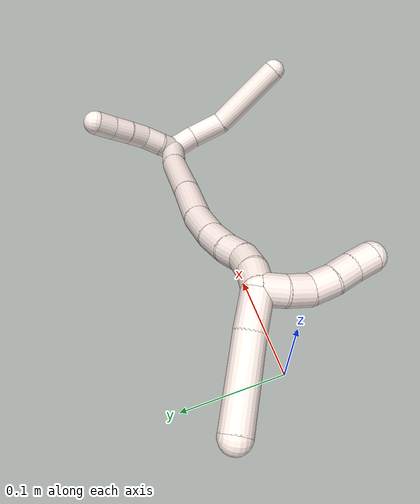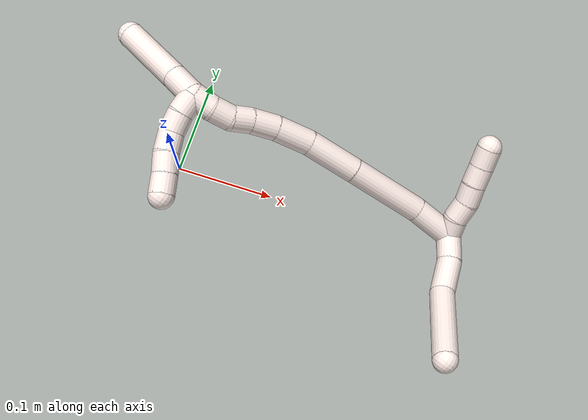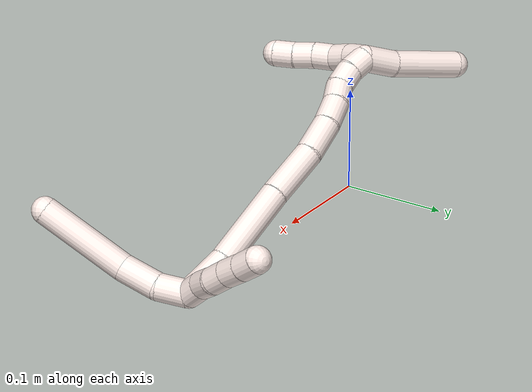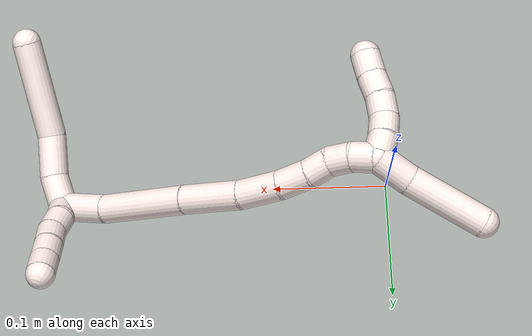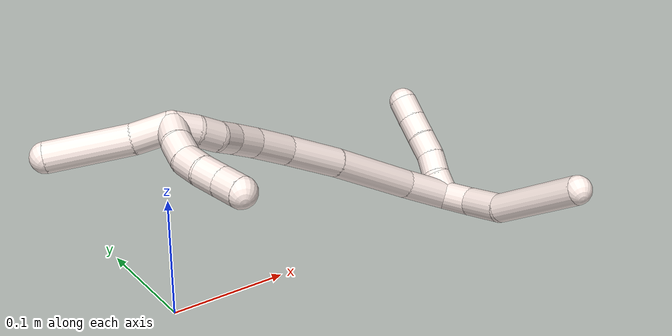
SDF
<sdf version="1.7">
 <world name="default">
  <model name="11">
   <static>0</static>
   <link name="11">
    <collision name="collision-cylinder-e_1_2_8">
     <pose>0.007377 0.005452 0.010743 -0.46965 0.549432 -0.134651</pose>
     <geometry><cylinder><radius>0.0125</radius><length>0.028253</length></cylinder></geometry>
     <surface>
      <friction><ode><mu>1.16</mu><mu2>1.16</mu2><slip1>0</slip1><slip2>0</slip2></ode></friction>
      <contact><ode><kp>1e+06</kp><kd>1</kd><max_vel>0</max_vel><min_depth>0.001</min_depth></ode></contact>
     </surface>
    </collision>
    <visual name="visual-cylinder-e_1_2_8">
     <pose>0.007377 0.005452 0.010743 -0.46965 0.549432 -0.134651</pose>
     <geometry><cylinder><radius>0.0125</radius><length>0.028253</length></cylinder></geometry>
     <material><ambient>1 0.933333 0.909804 1</ambient></material>
    </visual>
    <collision name="collision-cylinder-e_2_8_9">
     <pose>0.01982 0.020517 0.036425 -0.571717 0.277841 -0.082143</pose>
     <geometry><cylinder><radius>0.0125</radius><length>0.036947</length></cylinder></geometry>
     <surface>
      <friction><ode><mu>1.16</mu><mu2>1.16</mu2><slip1>0</slip1><slip2>0</slip2></ode></friction>
      <contact><ode><kp>1e+06</kp><kd>1</kd><max_vel>0</max_vel><min_depth>0.001</min_depth></ode></contact>
     </surface>
    </collision>
    <visual name="visual-cylinder-e_2_8_9">
     <pose>0.01982 0.020517 0.036425 -0.571717 0.277841 -0.082143</pose>
     <geometry><cylinder><radius>0.0125</radius><length>0.036947</length></cylinder></geometry>
     <material><ambient>1 0.933333 0.909804 1</ambient></material>
    </visual>
    <collision name="collision-cylinder-e_3_9_6">
     <pose>0.040152 0.06165 0.075265 -0.92206 0.36828 -0.184507</pose>
     <geometry><cylinder><radius>0.0125</radius><length>0.084801</length></cylinder></geometry>
     <surface>
      <friction><ode><mu>1.16</mu><mu2>1.16</mu2><slip1>0</slip1><slip2>0</slip2></ode></friction>
      <contact><ode><kp>1e+06</kp><kd>1</kd><max_vel>0</max_vel><min_depth>0.001</min_depth></ode></contact>
     </surface>
    </collision>
    <visual name="visual-cylinder-e_3_9_6">
     <pose>0.040152 0.06165 0.075265 -0.92206 0.36828 -0.184507</pose>
     <geometry><cylinder><radius>0.0125</radius><length>0.084801</length></cylinder></geometry>
     <material><ambient>1 0.933333 0.909804 1</ambient></material>
    </visual>
    <collision name="collision-cylinder-e_1_2_10">
     <pose>-0.002336 0.004346 -0.008698 -2.67818 -0.235733 0.930306</pose>
     <geometry><cylinder><radius>0.0125</radius><length>0.02</length></cylinder></geometry>
     <surface>
      <friction><ode><mu>1.16</mu><mu2>1.16</mu2><slip1>0</slip1><slip2>0</slip2></ode></friction>
      <contact><ode><kp>1e+06</kp><kd>1</kd><max_vel>0</max_vel><min_depth>0.001</min_depth></ode></contact>
     </surface>
    </collision>
    <visual name="visual-cylinder-e_1_2_10">
     <pose>-0.002336 0.004346 -0.008698 -2.67818 -0.235733 0.930306</pose>
     <geometry><cylinder><radius>0.0125</radius><length>0.02</length></cylinder></geometry>
     <material><ambient>1 0.933333 0.909804 1</ambient></material>
    </visual>
    <collision name="collision-cylinder-e_2_10_11">
     <pose>-0.004823 0.011813 -0.026895 -2.82425 -0.015197 0.094904</pose>
     <geometry><cylinder><radius>0.0125</radius><length>0.02</length></cylinder></geometry>
     <surface>
      <friction><ode><mu>1.16</mu><mu2>1.16</mu2><slip1>0</slip1><slip2>0</slip2></ode></friction>
      <contact><ode><kp>1e+06</kp><kd>1</kd><max_vel>0</max_vel><min_depth>0.001</min_depth></ode></contact>
     </surface>
    </collision>
    <visual name="visual-cylinder-e_2_10_11">
     <pose>-0.004823 0.011813 -0.026895 -2.82425 -0.015197 0.094904</pose>
     <geometry><cylinder><radius>0.0125</radius><length>0.02</length></cylinder></geometry>
     <material><ambient>1 0.933333 0.909804 1</ambient></material>
    </visual>
    <collision name="collision-cylinder-e_3_11_12">
     <pose>-0.007509 0.018476 -0.045396 -2.76657 -0.256153 1.19261</pose>
     <geometry><cylinder><radius>0.0125</radius><length>0.02</length></cylinder></geometry>
     <surface>
      <friction><ode><mu>1.16</mu><mu2>1.16</mu2><slip1>0</slip1><slip2>0</slip2></ode></friction>
      <contact><ode><kp>1e+06</kp><kd>1</kd><max_vel>0</max_vel><min_depth>0.001</min_depth></ode></contact>
     </surface>
    </collision>
    <visual name="visual-cylinder-e_3_11_12">
     <pose>-0.007509 0.018476 -0.045396 -2.76657 -0.256153 1.19261</pose>
     <geometry><cylinder><radius>0.0125</radius><length>0.02</length></cylinder></geometry>
     <material><ambient>1 0.933333 0.909804 1</ambient></material>
    </visual>
    <collision name="collision-cylinder-e_4_12_13">
     <pose>-0.012195 0.024994 -0.063699 -2.83209 -0.216963 1.21895</pose>
     <geometry><cylinder><radius>0.0125</radius><length>0.02</length></cylinder></geometry>
     <surface>
      <friction><ode><mu>1.16</mu><mu2>1.16</mu2><slip1>0</slip1><slip2>0</slip2></ode></friction>
      <contact><ode><kp>1e+06</kp><kd>1</kd><max_vel>0</max_vel><min_depth>0.001</min_depth></ode></contact>
     </surface>
    </collision>
    <visual name="visual-cylinder-e_4_12_13">
     <pose>-0.012195 0.024994 -0.063699 -2.83209 -0.216963 1.21895</pose>
     <geometry><cylinder><radius>0.0125</radius><length>0.02</length></cylinder></geometry>
     <material><ambient>1 0.933333 0.909804 1</ambient></material>
    </visual>
    <collision name="collision-cylinder-e_5_13_5">
     <pose>-0.016633 0.031363 -0.082125 -2.78541 -0.23056 1.14331</pose>
     <geometry><cylinder><radius>0.0125</radius><length>0.02</length></cylinder></geometry>
     <surface>
      <friction><ode><mu>1.16</mu><mu2>1.16</mu2><slip1>0</slip1><slip2>0</slip2></ode></friction>
      <contact><ode><kp>1e+06</kp><kd>1</kd><max_vel>0</max_vel><min_depth>0.001</min_depth></ode></contact>
     </surface>
    </collision>
    <visual name="visual-cylinder-e_5_13_5">
     <pose>-0.016633 0.031363 -0.082125 -2.78541 -0.23056 1.14331</pose>
     <geometry><cylinder><radius>0.0125</radius><length>0.02</length></cylinder></geometry>
     <material><ambient>1 0.933333 0.909804 1</ambient></material>
    </visual>
    <collision name="collision-cylinder-e_1_2_14">
     <pose>-0.020984 0.006647 -0.00104 -1.72599 -1.26052 1.4119</pose>
     <geometry><cylinder><radius>0.0125</radius><length>0.044073</length></cylinder></geometry>
     <surface>
      <friction><ode><mu>1.16</mu><mu2>1.16</mu2><slip1>0</slip1><slip2>0</slip2></ode></friction>
      <contact><ode><kp>1e+06</kp><kd>1</kd><max_vel>0</max_vel><min_depth>0.001</min_depth></ode></contact>
     </surface>
    </collision>
    <visual name="visual-cylinder-e_1_2_14">
     <pose>-0.020984 0.006647 -0.00104 -1.72599 -1.26052 1.4119</pose>
     <geometry><cylinder><radius>0.0125</radius><length>0.044073</length></cylinder></geometry>
     <material><ambient>1 0.933333 0.909804 1</ambient></material>
    </visual>
    <collision name="collision-cylinder-e_2_14_15">
     <pose>-0.078645 0.028753 0.000185 -1.42531 -1.1681 1.03793</pose>
     <geometry><cylinder><radius>0.0125</radius><length>0.07973</length></cylinder></geometry>
     <surface>
      <friction><ode><mu>1.16</mu><mu2>1.16</mu2><slip1>0</slip1><slip2>0</slip2></ode></friction>
      <contact><ode><kp>1e+06</kp><kd>1</kd><max_vel>0</max_vel><min_depth>0.001</min_depth></ode></contact>
     </surface>
    </collision>
    <visual name="visual-cylinder-e_2_14_15">
     <pose>-0.078645 0.028753 0.000185 -1.42531 -1.1681 1.03793</pose>
     <geometry><cylinder><radius>0.0125</radius><length>0.07973</length></cylinder></geometry>
     <material><ambient>1 0.933333 0.909804 1</ambient></material>
    </visual>
    <collision name="collision-cylinder-e_3_15_16">
     <pose>-0.140038 0.053251 0.004132 -1.38681 -1.21466 1.04751</pose>
     <geometry><cylinder><radius>0.0125</radius><length>0.052745</length></cylinder></geometry>
     <surface>
      <friction><ode><mu>1.16</mu><mu2>1.16</mu2><slip1>0</slip1><slip2>0</slip2></ode></friction>
      <contact><ode><kp>1e+06</kp><kd>1</kd><max_vel>0</max_vel><min_depth>0.001</min_depth></ode></contact>
     </surface>
    </collision>
    <visual name="visual-cylinder-e_3_15_16">
     <pose>-0.140038 0.053251 0.004132 -1.38681 -1.21466 1.04751</pose>
     <geometry><cylinder><radius>0.0125</radius><length>0.052745</length></cylinder></geometry>
     <material><ambient>1 0.933333 0.909804 1</ambient></material>
    </visual>
    <collision name="collision-cylinder-e_4_16_17">
     <pose>-0.181087 0.069634 0.009254 -1.13279 -1.10989 0.751004</pose>
     <geometry><cylinder><radius>0.0125</radius><length>0.036466</length></cylinder></geometry>
     <surface>
      <friction><ode><mu>1.16</mu><mu2>1.16</mu2><slip1>0</slip1><slip2>0</slip2></ode></friction>
      <contact><ode><kp>1e+06</kp><kd>1</kd><max_vel>0</max_vel><min_depth>0.001</min_depth></ode></contact>
     </surface>
    </collision>
    <visual name="visual-cylinder-e_4_16_17">
     <pose>-0.181087 0.069634 0.009254 -1.13279 -1.10989 0.751004</pose>
     <geometry><cylinder><radius>0.0125</radius><length>0.036466</length></cylinder></geometry>
     <material><ambient>1 0.933333 0.909804 1</ambient></material>
    </visual>
    <collision name="collision-cylinder-e_5_17_18">
     <pose>-0.208441 0.082716 0.01676 -0.954269 -1.00295 0.552346</pose>
     <geometry><cylinder><radius>0.0125</radius><length>0.026152</length></cylinder></geometry>
     <surface>
      <friction><ode><mu>1.16</mu><mu2>1.16</mu2><slip1>0</slip1><slip2>0</slip2></ode></friction>
      <contact><ode><kp>1e+06</kp><kd>1</kd><max_vel>0</max_vel><min_depth>0.001</min_depth></ode></contact>
     </surface>
    </collision>
    <visual name="visual-cylinder-e_5_17_18">
     <pose>-0.208441 0.082716 0.01676 -0.954269 -1.00295 0.552346</pose>
     <geometry><cylinder><radius>0.0125</radius><length>0.026152</length></cylinder></geometry>
     <material><ambient>1 0.933333 0.909804 1</ambient></material>
    </visual>
    <collision name="collision-cylinder-e_6_18_19">
     <pose>-0.227163 0.093377 0.025218 -0.842387 -0.862188 0.406428</pose>
     <geometry><cylinder><radius>0.0125</radius><length>0.020276</length></cylinder></geometry>
     <surface>
      <friction><ode><mu>1.16</mu><mu2>1.16</mu2><slip1>0</slip1><slip2>0</slip2></ode></friction>
      <contact><ode><kp>1e+06</kp><kd>1</kd><max_vel>0</max_vel><min_depth>0.001</min_depth></ode></contact>
     </surface>
    </collision>
    <visual name="visual-cylinder-e_6_18_19">
     <pose>-0.227163 0.093377 0.025218 -0.842387 -0.862188 0.406428</pose>
     <geometry><cylinder><radius>0.0125</radius><length>0.020276</length></cylinder></geometry>
     <material><ambient>1 0.933333 0.909804 1</ambient></material>
    </visual>
    <collision name="collision-cylinder-e_7_19_20">
     <pose>-0.243898 0.102378 0.030913 -1.26139 -1.12848 0.865759</pose>
     <geometry><cylinder><radius>0.0125</radius><length>0.020001</length></cylinder></geometry>
     <surface>
      <friction><ode><mu>1.16</mu><mu2>1.16</mu2><slip1>0</slip1><slip2>0</slip2></ode></friction>
      <contact><ode><kp>1e+06</kp><kd>1</kd><max_vel>0</max_vel><min_depth>0.001</min_depth></ode></contact>
     </surface>
    </collision>
    <visual name="visual-cylinder-e_7_19_20">
     <pose>-0.243898 0.102378 0.030913 -1.26139 -1.12848 0.865759</pose>
     <geometry><cylinder><radius>0.0125</radius><length>0.020001</length></cylinder></geometry>
     <material><ambient>1 0.933333 0.909804 1</ambient></material>
    </visual>
    <collision name="collision-cylinder-e_8_20_1">
     <pose>-0.262946 0.108787 0.032276 -1.54516 -1.34184 1.31695</pose>
     <geometry><cylinder><radius>0.0125</radius><length>0.020556</length></cylinder></geometry>
     <surface>
      <friction><ode><mu>1.16</mu><mu2>1.16</mu2><slip1>0</slip1><slip2>0</slip2></ode></friction>
      <contact><ode><kp>1e+06</kp><kd>1</kd><max_vel>0</max_vel><min_depth>0.001</min_depth></ode></contact>
     </surface>
    </collision>
    <visual name="visual-cylinder-e_8_20_1">
     <pose>-0.262946 0.108787 0.032276 -1.54516 -1.34184 1.31695</pose>
     <geometry><cylinder><radius>0.0125</radius><length>0.020556</length></cylinder></geometry>
     <material><ambient>1 0.933333 0.909804 1</ambient></material>
    </visual>
    <collision name="collision-cylinder-e_1_1_21">
     <pose>-0.286375 0.103353 0.030203 1.83883 -1.03029 -1.27747</pose>
     <geometry><cylinder><radius>0.0125</radius><length>0.031301</length></cylinder></geometry>
     <surface>
      <friction><ode><mu>1.16</mu><mu2>1.16</mu2><slip1>0</slip1><slip2>0</slip2></ode></friction>
      <contact><ode><kp>1e+06</kp><kd>1</kd><max_vel>0</max_vel><min_depth>0.001</min_depth></ode></contact>
     </surface>
    </collision>
    <visual name="visual-cylinder-e_1_1_21">
     <pose>-0.286375 0.103353 0.030203 1.83883 -1.03029 -1.27747</pose>
     <geometry><cylinder><radius>0.0125</radius><length>0.031301</length></cylinder></geometry>
     <material><ambient>1 0.933333 0.909804 1</ambient></material>
    </visual>
    <collision name="collision-cylinder-e_2_21_4">
     <pose>-0.331464 0.083155 0.023343 1.93413 -1.17316 -1.53386</pose>
     <geometry><cylinder><radius>0.0125</radius><length>0.068699</length></cylinder></geometry>
     <surface>
      <friction><ode><mu>1.16</mu><mu2>1.16</mu2><slip1>0</slip1><slip2>0</slip2></ode></friction>
      <contact><ode><kp>1e+06</kp><kd>1</kd><max_vel>0</max_vel><min_depth>0.001</min_depth></ode></contact>
     </surface>
    </collision>
    <visual name="visual-cylinder-e_2_21_4">
     <pose>-0.331464 0.083155 0.023343 1.93413 -1.17316 -1.53386</pose>
     <geometry><cylinder><radius>0.0125</radius><length>0.068699</length></cylinder></geometry>
     <material><ambient>1 0.933333 0.909804 1</ambient></material>
    </visual>
    <collision name="collision-cylinder-e_1_1_22">
     <pose>-0.273026 0.111508 0.042328 -0.038901 -0.007047 0.000137</pose>
     <geometry><cylinder><radius>0.0125</radius><length>0.02</length></cylinder></geometry>
     <surface>
      <friction><ode><mu>1.16</mu><mu2>1.16</mu2><slip1>0</slip1><slip2>0</slip2></ode></friction>
      <contact><ode><kp>1e+06</kp><kd>1</kd><max_vel>0</max_vel><min_depth>0.001</min_depth></ode></contact>
     </surface>
    </collision>
    <visual name="visual-cylinder-e_1_1_22">
     <pose>-0.273026 0.111508 0.042328 -0.038901 -0.007047 0.000137</pose>
     <geometry><cylinder><radius>0.0125</radius><length>0.02</length></cylinder></geometry>
     <material><ambient>1 0.933333 0.909804 1</ambient></material>
    </visual>
    <collision name="collision-cylinder-e_2_22_23">
     <pose>-0.271417 0.111772 0.062178 0.012687 0.168838 0.001074</pose>
     <geometry><cylinder><radius>0.0125</radius><length>0.02</length></cylinder></geometry>
     <surface>
      <friction><ode><mu>1.16</mu><mu2>1.16</mu2><slip1>0</slip1><slip2>0</slip2></ode></friction>
      <contact><ode><kp>1e+06</kp><kd>1</kd><max_vel>0</max_vel><min_depth>0.001</min_depth></ode></contact>
     </surface>
    </collision>
    <visual name="visual-cylinder-e_2_22_23">
     <pose>-0.271417 0.111772 0.062178 0.012687 0.168838 0.001074</pose>
     <geometry><cylinder><radius>0.0125</radius><length>0.02</length></cylinder></geometry>
     <material><ambient>1 0.933333 0.909804 1</ambient></material>
    </visual>
    <collision name="collision-cylinder-e_3_23_24">
     <pose>-0.26589 0.113987 0.080964 -0.256288 0.394824 -0.051533</pose>
     <geometry><cylinder><radius>0.0125</radius><length>0.02</length></cylinder></geometry>
     <surface>
      <friction><ode><mu>1.16</mu><mu2>1.16</mu2><slip1>0</slip1><slip2>0</slip2></ode></friction>
      <contact><ode><kp>1e+06</kp><kd>1</kd><max_vel>0</max_vel><min_depth>0.001</min_depth></ode></contact>
     </surface>
    </collision>
    <visual name="visual-cylinder-e_3_23_24">
     <pose>-0.26589 0.113987 0.080964 -0.256288 0.394824 -0.051533</pose>
     <geometry><cylinder><radius>0.0125</radius><length>0.02</length></cylinder></geometry>
     <material><ambient>1 0.933333 0.909804 1</ambient></material>
    </visual>
    <collision name="collision-cylinder-e_4_24_25">
     <pose>-0.256678 0.118161 0.09813 -0.219187 0.56634 -0.064016</pose>
     <geometry><cylinder><radius>0.0125</radius><length>0.02</length></cylinder></geometry>
     <surface>
      <friction><ode><mu>1.16</mu><mu2>1.16</mu2><slip1>0</slip1><slip2>0</slip2></ode></friction>
      <contact><ode><kp>1e+06</kp><kd>1</kd><max_vel>0</max_vel><min_depth>0.001</min_depth></ode></contact>
     </surface>
    </collision>
    <visual name="visual-cylinder-e_4_24_25">
     <pose>-0.256678 0.118161 0.09813 -0.219187 0.56634 -0.064016</pose>
     <geometry><cylinder><radius>0.0125</radius><length>0.02</length></cylinder></geometry>
     <material><ambient>1 0.933333 0.909804 1</ambient></material>
    </visual>
    <collision name="collision-cylinder-e_5_25_3">
     <pose>-0.24666 0.122491 0.114859 -0.285735 0.483939 -0.070975</pose>
     <geometry><cylinder><radius>0.0125</radius><length>0.02</length></cylinder></geometry>
     <surface>
      <friction><ode><mu>1.16</mu><mu2>1.16</mu2><slip1>0</slip1><slip2>0</slip2></ode></friction>
      <contact><ode><kp>1e+06</kp><kd>1</kd><max_vel>0</max_vel><min_depth>0.001</min_depth></ode></contact>
     </surface>
    </collision>
    <visual name="visual-cylinder-e_5_25_3">
     <pose>-0.24666 0.122491 0.114859 -0.285735 0.483939 -0.070975</pose>
     <geometry><cylinder><radius>0.0125</radius><length>0.02</length></cylinder></geometry>
     <material><ambient>1 0.933333 0.909804 1</ambient></material>
    </visual>
    <collision name="collision-sphere-3">
     <pose>-0.242007 0.124986 0.123352 0 -0 0</pose>
     <geometry><sphere><radius>0.0125</radius></sphere></geometry>
     <surface>
      <friction><ode><mu>1.16</mu><mu2>1.16</mu2><slip1>0</slip1><slip2>0</slip2></ode></friction>
      <contact><ode><kp>1e+06</kp><kd>1</kd><max_vel>0</max_vel><min_depth>0.001</min_depth></ode></contact>
     </surface>
    </collision>
    <visual name="visual-sphere-3">
     <pose>-0.242007 0.124986 0.123352 0 -0 0</pose>
     <geometry><sphere><radius>0.0125</radius></sphere></geometry>
     <material><ambient>1 0.933333 0.909804 1</ambient></material>
    </visual>
    <collision name="collision-sphere-25">
     <pose>-0.251312 0.119996 0.106366 0 -0 0</pose>
     <geometry><sphere><radius>0.0125</radius></sphere></geometry>
     <surface>
      <friction><ode><mu>1.16</mu><mu2>1.16</mu2><slip1>0</slip1><slip2>0</slip2></ode></friction>
      <contact><ode><kp>1e+06</kp><kd>1</kd><max_vel>0</max_vel><min_depth>0.001</min_depth></ode></contact>
     </surface>
    </collision>
    <visual name="visual-sphere-25">
     <pose>-0.251312 0.119996 0.106366 0 -0 0</pose>
     <geometry><sphere><radius>0.0125</radius></sphere></geometry>
     <material><ambient>1 0.933333 0.909804 1</ambient></material>
    </visual>
    <collision name="collision-sphere-24">
     <pose>-0.262043 0.116327 0.089893 0 -0 0</pose>
     <geometry><sphere><radius>0.0125</radius></sphere></geometry>
     <surface>
      <friction><ode><mu>1.16</mu><mu2>1.16</mu2><slip1>0</slip1><slip2>0</slip2></ode></friction>
      <contact><ode><kp>1e+06</kp><kd>1</kd><max_vel>0</max_vel><min_depth>0.001</min_depth></ode></contact>
     </surface>
    </collision>
    <visual name="visual-sphere-24">
     <pose>-0.262043 0.116327 0.089893 0 -0 0</pose>
     <geometry><sphere><radius>0.0125</radius></sphere></geometry>
     <material><ambient>1 0.933333 0.909804 1</ambient></material>
    </visual>
    <collision name="collision-sphere-23">
     <pose>-0.269736 0.111647 0.072035 0 -0 0</pose>
     <geometry><sphere><radius>0.0125</radius></sphere></geometry>
     <surface>
      <friction><ode><mu>1.16</mu><mu2>1.16</mu2><slip1>0</slip1><slip2>0</slip2></ode></friction>
      <contact><ode><kp>1e+06</kp><kd>1</kd><max_vel>0</max_vel><min_depth>0.001</min_depth></ode></contact>
     </surface>
    </collision>
    <visual name="visual-sphere-23">
     <pose>-0.269736 0.111647 0.072035 0 -0 0</pose>
     <geometry><sphere><radius>0.0125</radius></sphere></geometry>
     <material><ambient>1 0.933333 0.909804 1</ambient></material>
    </visual>
    <collision name="collision-sphere-22">
     <pose>-0.273097 0.111897 0.052321 0 -0 0</pose>
     <geometry><sphere><radius>0.0125</radius></sphere></geometry>
     <surface>
      <friction><ode><mu>1.16</mu><mu2>1.16</mu2><slip1>0</slip1><slip2>0</slip2></ode></friction>
      <contact><ode><kp>1e+06</kp><kd>1</kd><max_vel>0</max_vel><min_depth>0.001</min_depth></ode></contact>
     </surface>
    </collision>
    <visual name="visual-sphere-22">
     <pose>-0.273097 0.111897 0.052321 0 -0 0</pose>
     <geometry><sphere><radius>0.0125</radius></sphere></geometry>
     <material><ambient>1 0.933333 0.909804 1</ambient></material>
    </visual>
    <collision name="collision-sphere-4">
     <pose>-0.363134 0.070721 0.018616 0 -0 0</pose>
     <geometry><sphere><radius>0.0125</radius></sphere></geometry>
     <surface>
      <friction><ode><mu>1.16</mu><mu2>1.16</mu2><slip1>0</slip1><slip2>0</slip2></ode></friction>
      <contact><ode><kp>1e+06</kp><kd>1</kd><max_vel>0</max_vel><min_depth>0.001</min_depth></ode></contact>
     </surface>
    </collision>
    <visual name="visual-sphere-4">
     <pose>-0.363134 0.070721 0.018616 0 -0 0</pose>
     <geometry><sphere><radius>0.0125</radius></sphere></geometry>
     <material><ambient>1 0.933333 0.909804 1</ambient></material>
    </visual>
    <collision name="collision-sphere-21">
     <pose>-0.299795 0.095588 0.028071 0 -0 0</pose>
     <geometry><sphere><radius>0.0125</radius></sphere></geometry>
     <surface>
      <friction><ode><mu>1.16</mu><mu2>1.16</mu2><slip1>0</slip1><slip2>0</slip2></ode></friction>
      <contact><ode><kp>1e+06</kp><kd>1</kd><max_vel>0</max_vel><min_depth>0.001</min_depth></ode></contact>
     </surface>
    </collision>
    <visual name="visual-sphere-21">
     <pose>-0.299795 0.095588 0.028071 0 -0 0</pose>
     <geometry><sphere><radius>0.0125</radius></sphere></geometry>
     <material><ambient>1 0.933333 0.909804 1</ambient></material>
    </visual>
    <collision name="collision-sphere-1">
     <pose>-0.272956 0.111119 0.032336 0 -0 0</pose>
     <geometry><sphere><radius>0.0125</radius></sphere></geometry>
     <surface>
      <friction><ode><mu>1.16</mu><mu2>1.16</mu2><slip1>0</slip1><slip2>0</slip2></ode></friction>
      <contact><ode><kp>1e+06</kp><kd>1</kd><max_vel>0</max_vel><min_depth>0.001</min_depth></ode></contact>
     </surface>
    </collision>
    <visual name="visual-sphere-1">
     <pose>-0.272956 0.111119 0.032336 0 -0 0</pose>
     <geometry><sphere><radius>0.0125</radius></sphere></geometry>
     <material><ambient>1 0.933333 0.909804 1</ambient></material>
    </visual>
    <collision name="collision-sphere-11">
     <pose>-0.004975 0.014933 -0.036395 0 -0 0</pose>
     <geometry><sphere><radius>0.0125</radius></sphere></geometry>
     <surface>
      <friction><ode><mu>1.16</mu><mu2>1.16</mu2><slip1>0</slip1><slip2>0</slip2></ode></friction>
      <contact><ode><kp>1e+06</kp><kd>1</kd><max_vel>0</max_vel><min_depth>0.001</min_depth></ode></contact>
     </surface>
    </collision>
    <visual name="visual-sphere-11">
     <pose>-0.004975 0.014933 -0.036395 0 -0 0</pose>
     <geometry><sphere><radius>0.0125</radius></sphere></geometry>
     <material><ambient>1 0.933333 0.909804 1</ambient></material>
    </visual>
    <collision name="collision-sphere-10">
     <pose>-0.004671 0.008693 -0.017396 0 -0 0</pose>
     <geometry><sphere><radius>0.0125</radius></sphere></geometry>
     <surface>
      <friction><ode><mu>1.16</mu><mu2>1.16</mu2><slip1>0</slip1><slip2>0</slip2></ode></friction>
      <contact><ode><kp>1e+06</kp><kd>1</kd><max_vel>0</max_vel><min_depth>0.001</min_depth></ode></contact>
     </surface>
    </collision>
    <visual name="visual-sphere-10">
     <pose>-0.004671 0.008693 -0.017396 0 -0 0</pose>
     <geometry><sphere><radius>0.0125</radius></sphere></geometry>
     <material><ambient>1 0.933333 0.909804 1</ambient></material>
    </visual>
    <collision name="collision-sphere-6">
     <pose>0.055417 0.093171 0.099165 0 -0 0</pose>
     <geometry><sphere><radius>0.0125</radius></sphere></geometry>
     <surface>
      <friction><ode><mu>1.16</mu><mu2>1.16</mu2><slip1>0</slip1><slip2>0</slip2></ode></friction>
      <contact><ode><kp>1e+06</kp><kd>1</kd><max_vel>0</max_vel><min_depth>0.001</min_depth></ode></contact>
     </surface>
    </collision>
    <visual name="visual-sphere-6">
     <pose>0.055417 0.093171 0.099165 0 -0 0</pose>
     <geometry><sphere><radius>0.0125</radius></sphere></geometry>
     <material><ambient>1 0.933333 0.909804 1</ambient></material>
    </visual>
    <collision name="collision-sphere-9">
     <pose>0.024887 0.030129 0.051365 0 -0 0</pose>
     <geometry><sphere><radius>0.0125</radius></sphere></geometry>
     <surface>
      <friction><ode><mu>1.16</mu><mu2>1.16</mu2><slip1>0</slip1><slip2>0</slip2></ode></friction>
      <contact><ode><kp>1e+06</kp><kd>1</kd><max_vel>0</max_vel><min_depth>0.001</min_depth></ode></contact>
     </surface>
    </collision>
    <visual name="visual-sphere-9">
     <pose>0.024887 0.030129 0.051365 0 -0 0</pose>
     <geometry><sphere><radius>0.0125</radius></sphere></geometry>
     <material><ambient>1 0.933333 0.909804 1</ambient></material>
    </visual>
    <collision name="collision-sphere-2">
     <geometry><sphere><radius>0.0125</radius></sphere></geometry>
     <surface>
      <friction><ode><mu>1.16</mu><mu2>1.16</mu2><slip1>0</slip1><slip2>0</slip2></ode></friction>
      <contact><ode><kp>1e+06</kp><kd>1</kd><max_vel>0</max_vel><min_depth>0.001</min_depth></ode></contact>
     </surface>
    </collision>
    <visual name="visual-sphere-2">
     <geometry><sphere><radius>0.0125</radius></sphere></geometry>
     <material><ambient>1 0.933333 0.909804 1</ambient></material>
    </visual>
    <collision name="collision-sphere-19">
     <pose>-0.23486 0.098301 0.02961 0 -0 0</pose>
     <geometry><sphere><radius>0.0125</radius></sphere></geometry>
     <surface>
      <friction><ode><mu>1.16</mu><mu2>1.16</mu2><slip1>0</slip1><slip2>0</slip2></ode></friction>
      <contact><ode><kp>1e+06</kp><kd>1</kd><max_vel>0</max_vel><min_depth>0.001</min_depth></ode></contact>
     </surface>
    </collision>
    <visual name="visual-sphere-19">
     <pose>-0.23486 0.098301 0.02961 0 -0 0</pose>
     <geometry><sphere><radius>0.0125</radius></sphere></geometry>
     <material><ambient>1 0.933333 0.909804 1</ambient></material>
    </visual>
    <collision name="collision-sphere-8">
     <pose>0.014754 0.010904 0.021486 0 -0 0</pose>
     <geometry><sphere><radius>0.0125</radius></sphere></geometry>
     <surface>
      <friction><ode><mu>1.16</mu><mu2>1.16</mu2><slip1>0</slip1><slip2>0</slip2></ode></friction>
      <contact><ode><kp>1e+06</kp><kd>1</kd><max_vel>0</max_vel><min_depth>0.001</min_depth></ode></contact>
     </surface>
    </collision>
    <visual name="visual-sphere-8">
     <pose>0.014754 0.010904 0.021486 0 -0 0</pose>
     <geometry><sphere><radius>0.0125</radius></sphere></geometry>
     <material><ambient>1 0.933333 0.909804 1</ambient></material>
    </visual>
    <collision name="collision-sphere-12">
     <pose>-0.010042 0.02202 -0.054398 0 -0 0</pose>
     <geometry><sphere><radius>0.0125</radius></sphere></geometry>
     <surface>
      <friction><ode><mu>1.16</mu><mu2>1.16</mu2><slip1>0</slip1><slip2>0</slip2></ode></friction>
      <contact><ode><kp>1e+06</kp><kd>1</kd><max_vel>0</max_vel><min_depth>0.001</min_depth></ode></contact>
     </surface>
    </collision>
    <visual name="visual-sphere-12">
     <pose>-0.010042 0.02202 -0.054398 0 -0 0</pose>
     <geometry><sphere><radius>0.0125</radius></sphere></geometry>
     <material><ambient>1 0.933333 0.909804 1</ambient></material>
    </visual>
    <collision name="collision-sphere-13">
     <pose>-0.014348 0.027969 -0.073001 0 -0 0</pose>
     <geometry><sphere><radius>0.0125</radius></sphere></geometry>
     <surface>
      <friction><ode><mu>1.16</mu><mu2>1.16</mu2><slip1>0</slip1><slip2>0</slip2></ode></friction>
      <contact><ode><kp>1e+06</kp><kd>1</kd><max_vel>0</max_vel><min_depth>0.001</min_depth></ode></contact>
     </surface>
    </collision>
    <visual name="visual-sphere-13">
     <pose>-0.014348 0.027969 -0.073001 0 -0 0</pose>
     <geometry><sphere><radius>0.0125</radius></sphere></geometry>
     <material><ambient>1 0.933333 0.909804 1</ambient></material>
    </visual>
    <collision name="collision-sphere-5">
     <pose>-0.018918 0.034758 -0.09125 0 -0 0</pose>
     <geometry><sphere><radius>0.0125</radius></sphere></geometry>
     <surface>
      <friction><ode><mu>1.16</mu><mu2>1.16</mu2><slip1>0</slip1><slip2>0</slip2></ode></friction>
      <contact><ode><kp>1e+06</kp><kd>1</kd><max_vel>0</max_vel><min_depth>0.001</min_depth></ode></contact>
     </surface>
    </collision>
    <visual name="visual-sphere-5">
     <pose>-0.018918 0.034758 -0.09125 0 -0 0</pose>
     <geometry><sphere><radius>0.0125</radius></sphere></geometry>
     <material><ambient>1 0.933333 0.909804 1</ambient></material>
    </visual>
    <collision name="collision-sphere-14">
     <pose>-0.041969 0.013295 -0.00208 0 -0 0</pose>
     <geometry><sphere><radius>0.0125</radius></sphere></geometry>
     <surface>
      <friction><ode><mu>1.16</mu><mu2>1.16</mu2><slip1>0</slip1><slip2>0</slip2></ode></friction>
      <contact><ode><kp>1e+06</kp><kd>1</kd><max_vel>0</max_vel><min_depth>0.001</min_depth></ode></contact>
     </surface>
    </collision>
    <visual name="visual-sphere-14">
     <pose>-0.041969 0.013295 -0.00208 0 -0 0</pose>
     <geometry><sphere><radius>0.0125</radius></sphere></geometry>
     <material><ambient>1 0.933333 0.909804 1</ambient></material>
    </visual>
    <collision name="collision-sphere-15">
     <pose>-0.115321 0.044211 0.00245 0 -0 0</pose>
     <geometry><sphere><radius>0.0125</radius></sphere></geometry>
     <surface>
      <friction><ode><mu>1.16</mu><mu2>1.16</mu2><slip1>0</slip1><slip2>0</slip2></ode></friction>
      <contact><ode><kp>1e+06</kp><kd>1</kd><max_vel>0</max_vel><min_depth>0.001</min_depth></ode></contact>
     </surface>
    </collision>
    <visual name="visual-sphere-15">
     <pose>-0.115321 0.044211 0.00245 0 -0 0</pose>
     <geometry><sphere><radius>0.0125</radius></sphere></geometry>
     <material><ambient>1 0.933333 0.909804 1</ambient></material>
    </visual>
    <collision name="collision-sphere-16">
     <pose>-0.164756 0.06229 0.005814 0 -0 0</pose>
     <geometry><sphere><radius>0.0125</radius></sphere></geometry>
     <surface>
      <friction><ode><mu>1.16</mu><mu2>1.16</mu2><slip1>0</slip1><slip2>0</slip2></ode></friction>
      <contact><ode><kp>1e+06</kp><kd>1</kd><max_vel>0</max_vel><min_depth>0.001</min_depth></ode></contact>
     </surface>
    </collision>
    <visual name="visual-sphere-16">
     <pose>-0.164756 0.06229 0.005814 0 -0 0</pose>
     <geometry><sphere><radius>0.0125</radius></sphere></geometry>
     <material><ambient>1 0.933333 0.909804 1</ambient></material>
    </visual>
    <collision name="collision-sphere-17">
     <pose>-0.197417 0.076978 0.012693 0 -0 0</pose>
     <geometry><sphere><radius>0.0125</radius></sphere></geometry>
     <surface>
      <friction><ode><mu>1.16</mu><mu2>1.16</mu2><slip1>0</slip1><slip2>0</slip2></ode></friction>
      <contact><ode><kp>1e+06</kp><kd>1</kd><max_vel>0</max_vel><min_depth>0.001</min_depth></ode></contact>
     </surface>
    </collision>
    <visual name="visual-sphere-17">
     <pose>-0.197417 0.076978 0.012693 0 -0 0</pose>
     <geometry><sphere><radius>0.0125</radius></sphere></geometry>
     <material><ambient>1 0.933333 0.909804 1</ambient></material>
    </visual>
    <collision name="collision-sphere-18">
     <pose>-0.219465 0.088454 0.020826 0 -0 0</pose>
     <geometry><sphere><radius>0.0125</radius></sphere></geometry>
     <surface>
      <friction><ode><mu>1.16</mu><mu2>1.16</mu2><slip1>0</slip1><slip2>0</slip2></ode></friction>
      <contact><ode><kp>1e+06</kp><kd>1</kd><max_vel>0</max_vel><min_depth>0.001</min_depth></ode></contact>
     </surface>
    </collision>
    <visual name="visual-sphere-18">
     <pose>-0.219465 0.088454 0.020826 0 -0 0</pose>
     <geometry><sphere><radius>0.0125</radius></sphere></geometry>
     <material><ambient>1 0.933333 0.909804 1</ambient></material>
    </visual>
    <collision name="collision-sphere-20">
     <pose>-0.252937 0.106455 0.032217 0 -0 0</pose>
     <geometry><sphere><radius>0.0125</radius></sphere></geometry>
     <surface>
      <friction><ode><mu>1.16</mu><mu2>1.16</mu2><slip1>0</slip1><slip2>0</slip2></ode></friction>
      <contact><ode><kp>1e+06</kp><kd>1</kd><max_vel>0</max_vel><min_depth>0.001</min_depth></ode></contact>
     </surface>
    </collision>
    <visual name="visual-sphere-20">
     <pose>-0.252937 0.106455 0.032217 0 -0 0</pose>
     <geometry><sphere><radius>0.0125</radius></sphere></geometry>
     <material><ambient>1 0.933333 0.909804 1</ambient></material>
    </visual>
    <inertial>
     <pose>-0.128078 0.059653 0.022359 0 -0 0</pose>
     <mass>0.75</mass>
     <inertia><ixx>7e-05</ixx><ixy>0</ixy><ixz>0</ixz><iyy>0.000169</iyy><iyz>0</iyz><izz>2.5e-05</izz></inertia>
    </inertial>
   </link>
   <pose>0.28532 0.014899 0.011518 1.84098 0.135093 -0.279657</pose>
  </model>
 </world>
</sdf>
